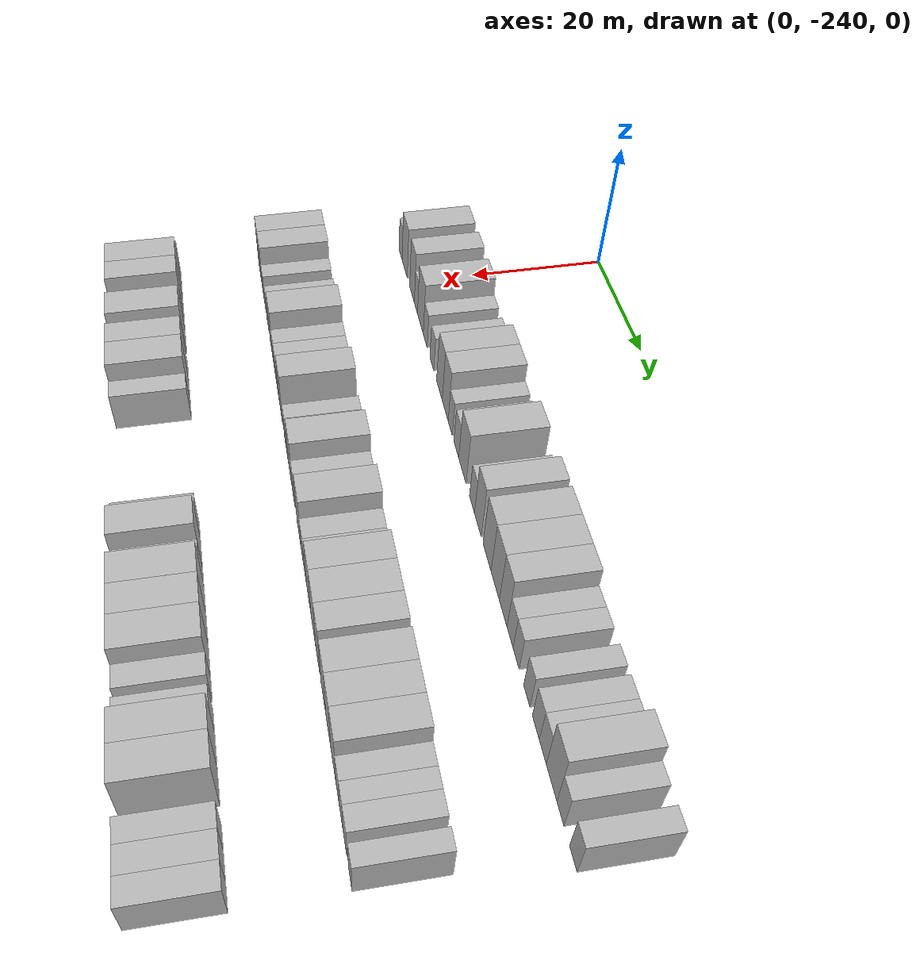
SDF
<sdf version="1.6">
 <world name="default">
  <model name="building_1">
   <static>1</static>
   <pose>25.0000 -246.7035 0 0.000000 0.000000 0.000000</pose>
   <link name="link">
    <pose>0 0 3.00 0 0 0</pose>
    <collision name="collision"><geometry><box><size>10.0000 2.5931 6.0000</size></box></geometry></collision>
    <visual name="visual">
     <cast_shadows>0</cast_shadows>
     <geometry><box><size>10.0000 2.5931 6.0000</size></box></geometry>
     <material>
      <script>
       <uri>model://HANNAS_wall/materials/scripts</uri>
       <uri>model://HANNAS_wall/materials/textures</uri>
       <name>vrc/HANNAS_wall</name>
      </script>
     </material>
    </visual>
   </link>
  </model>
  <model name="building_2">
   <static>1</static>
   <pose>25.0000 -243.2107 0 0.000000 0.000000 0.000000</pose>
   <link name="link">
    <pose>0 0 4.50 0 0 0</pose>
    <collision name="collision"><geometry><box><size>10.0000 4.3924 9.0000</size></box></geometry></collision>
    <visual name="visual">
     <cast_shadows>0</cast_shadows>
     <geometry><box><size>10.0000 4.3924 9.0000</size></box></geometry>
     <material>
      <script>
       <uri>model://HANNAS_wall/materials/scripts</uri>
       <uri>model://HANNAS_wall/materials/textures</uri>
       <name>vrc/HANNAS_wall</name>
      </script>
     </material>
    </visual>
   </link>
  </model>
  <model name="building_3">
   <static>1</static>
   <pose>25.0000 -237.1460 0 0.000000 0.000000 0.000000</pose>
   <link name="link">
    <pose>0 0 4.50 0 0 0</pose>
    <collision name="collision"><geometry><box><size>10.0000 3.7371 9.0000</size></box></geometry></collision>
    <visual name="visual">
     <cast_shadows>0</cast_shadows>
     <geometry><box><size>10.0000 3.7371 9.0000</size></box></geometry>
     <material>
      <script>
       <uri>model://HANNAS_wall/materials/scripts</uri>
       <uri>model://HANNAS_wall/materials/textures</uri>
       <name>vrc/HANNAS_wall</name>
      </script>
     </material>
    </visual>
   </link>
  </model>
  <model name="building_4">
   <static>1</static>
   <pose>25.0000 -234.0140 0 0.000000 0.000000 0.000000</pose>
   <link name="link">
    <pose>0 0 3.00 0 0 0</pose>
    <collision name="collision"><geometry><box><size>10.0000 2.5270 6.0000</size></box></geometry></collision>
    <visual name="visual">
     <cast_shadows>0</cast_shadows>
     <geometry><box><size>10.0000 2.5270 6.0000</size></box></geometry>
     <material>
      <script>
       <uri>model://HANNAS_wall/materials/scripts</uri>
       <uri>model://HANNAS_wall/materials/textures</uri>
       <name>vrc/HANNAS_wall</name>
      </script>
     </material>
    </visual>
   </link>
  </model>
  <model name="building_5">
   <static>1</static>
   <pose>25.0000 -230.5331 0 0.000000 0.000000 0.000000</pose>
   <link name="link">
    <pose>0 0 4.50 0 0 0</pose>
    <collision name="collision"><geometry><box><size>10.0000 4.4348 9.0000</size></box></geometry></collision>
    <visual name="visual">
     <cast_shadows>0</cast_shadows>
     <geometry><box><size>10.0000 4.4348 9.0000</size></box></geometry>
     <material>
      <script>
       <uri>model://HANNAS_wall/materials/scripts</uri>
       <uri>model://HANNAS_wall/materials/textures</uri>
       <name>vrc/HANNAS_wall</name>
      </script>
     </material>
    </visual>
   </link>
  </model>
  <model name="building_6">
   <static>1</static>
   <pose>25.0000 -226.8758 0 0.000000 0.000000 0.000000</pose>
   <link name="link">
    <pose>0 0 3.00 0 0 0</pose>
    <collision name="collision"><geometry><box><size>10.0000 2.8798 6.0000</size></box></geometry></collision>
    <visual name="visual">
     <cast_shadows>0</cast_shadows>
     <geometry><box><size>10.0000 2.8798 6.0000</size></box></geometry>
     <material>
      <script>
       <uri>model://HANNAS_wall/materials/scripts</uri>
       <uri>model://HANNAS_wall/materials/textures</uri>
       <name>vrc/HANNAS_wall</name>
      </script>
     </material>
    </visual>
   </link>
  </model>
  <model name="building_7">
   <static>1</static>
   <pose>25.0000 -222.0543 0 0.000000 0.000000 0.000000</pose>
   <link name="link">
    <pose>0 0 3.00 0 0 0</pose>
    <collision name="collision"><geometry><box><size>10.0000 2.7632 6.0000</size></box></geometry></collision>
    <visual name="visual">
     <cast_shadows>0</cast_shadows>
     <geometry><box><size>10.0000 2.7632 6.0000</size></box></geometry>
     <material>
      <script>
       <uri>model://HANNAS_wall/materials/scripts</uri>
       <uri>model://HANNAS_wall/materials/textures</uri>
       <name>vrc/HANNAS_wall</name>
      </script>
     </material>
    </visual>
   </link>
  </model>
  <model name="building_8">
   <static>1</static>
   <pose>25.0000 -216.7543 0 0.000000 0.000000 0.000000</pose>
   <link name="link">
    <pose>0 0 4.50 0 0 0</pose>
    <collision name="collision"><geometry><box><size>10.0000 3.8368 9.0000</size></box></geometry></collision>
    <visual name="visual">
     <cast_shadows>0</cast_shadows>
     <geometry><box><size>10.0000 3.8368 9.0000</size></box></geometry>
     <material>
      <script>
       <uri>model://HANNAS_wall/materials/scripts</uri>
       <uri>model://HANNAS_wall/materials/textures</uri>
       <name>vrc/HANNAS_wall</name>
      </script>
     </material>
    </visual>
   </link>
  </model>
  <model name="building_9">
   <static>1</static>
   <pose>25.0000 -212.8642 0 0.000000 0.000000 0.000000</pose>
   <link name="link">
    <pose>0 0 4.50 0 0 0</pose>
    <collision name="collision"><geometry><box><size>10.0000 3.9433 9.0000</size></box></geometry></collision>
    <visual name="visual">
     <cast_shadows>0</cast_shadows>
     <geometry><box><size>10.0000 3.9433 9.0000</size></box></geometry>
     <material>
      <script>
       <uri>model://HANNAS_wall/materials/scripts</uri>
       <uri>model://HANNAS_wall/materials/textures</uri>
       <name>vrc/HANNAS_wall</name>
      </script>
     </material>
    </visual>
   </link>
  </model>
  <model name="building_10">
   <static>1</static>
   <pose>25.0000 -209.5752 0 0.000000 0.000000 0.000000</pose>
   <link name="link">
    <pose>0 0 3.00 0 0 0</pose>
    <collision name="collision"><geometry><box><size>10.0000 2.6347 6.0000</size></box></geometry></collision>
    <visual name="visual">
     <cast_shadows>0</cast_shadows>
     <geometry><box><size>10.0000 2.6347 6.0000</size></box></geometry>
     <material>
      <script>
       <uri>model://HANNAS_wall/materials/scripts</uri>
       <uri>model://HANNAS_wall/materials/textures</uri>
       <name>vrc/HANNAS_wall</name>
      </script>
     </material>
    </visual>
   </link>
  </model>
  <model name="building_11">
   <static>1</static>
   <pose>25.0000 -205.7691 0 0.000000 0.000000 0.000000</pose>
   <link name="link">
    <pose>0 0 3.00 0 0 0</pose>
    <collision name="collision"><geometry><box><size>10.0000 2.9775 6.0000</size></box></geometry></collision>
    <visual name="visual">
     <cast_shadows>0</cast_shadows>
     <geometry><box><size>10.0000 2.9775 6.0000</size></box></geometry>
     <material>
      <script>
       <uri>model://HANNAS_wall/materials/scripts</uri>
       <uri>model://HANNAS_wall/materials/textures</uri>
       <name>vrc/HANNAS_wall</name>
      </script>
     </material>
    </visual>
   </link>
  </model>
  <model name="building_12">
   <static>1</static>
   <pose>25.0000 -202.0633 0 0.000000 0.000000 0.000000</pose>
   <link name="link">
    <pose>0 0 4.50 0 0 0</pose>
    <collision name="collision"><geometry><box><size>10.0000 4.4340 9.0000</size></box></geometry></collision>
    <visual name="visual">
     <cast_shadows>0</cast_shadows>
     <geometry><box><size>10.0000 4.4340 9.0000</size></box></geometry>
     <material>
      <script>
       <uri>model://HANNAS_wall/materials/scripts</uri>
       <uri>model://HANNAS_wall/materials/textures</uri>
       <name>vrc/HANNAS_wall</name>
      </script>
     </material>
    </visual>
   </link>
  </model>
  <model name="building_13">
   <static>1</static>
   <pose>25.0000 -196.4389 0 0.000000 0.000000 0.000000</pose>
   <link name="link">
    <pose>0 0 3.00 0 0 0</pose>
    <collision name="collision"><geometry><box><size>10.0000 2.8147 6.0000</size></box></geometry></collision>
    <visual name="visual">
     <cast_shadows>0</cast_shadows>
     <geometry><box><size>10.0000 2.8147 6.0000</size></box></geometry>
     <material>
      <script>
       <uri>model://HANNAS_wall/materials/scripts</uri>
       <uri>model://HANNAS_wall/materials/textures</uri>
       <name>vrc/HANNAS_wall</name>
      </script>
     </material>
    </visual>
   </link>
  </model>
  <model name="building_14">
   <static>1</static>
   <pose>25.0000 -193.1797 0 0.000000 0.000000 0.000000</pose>
   <link name="link">
    <pose>0 0 4.50 0 0 0</pose>
    <collision name="collision"><geometry><box><size>10.0000 3.7037 9.0000</size></box></geometry></collision>
    <visual name="visual">
     <cast_shadows>0</cast_shadows>
     <geometry><box><size>10.0000 3.7037 9.0000</size></box></geometry>
     <material>
      <script>
       <uri>model://HANNAS_wall/materials/scripts</uri>
       <uri>model://HANNAS_wall/materials/textures</uri>
       <name>vrc/HANNAS_wall</name>
      </script>
     </material>
    </visual>
   </link>
  </model>
  <model name="building_15">
   <static>1</static>
   <pose>25.0000 -188.2392 0 0.000000 0.000000 0.000000</pose>
   <link name="link">
    <pose>0 0 4.50 0 0 0</pose>
    <collision name="collision"><geometry><box><size>10.0000 4.1774 9.0000</size></box></geometry></collision>
    <visual name="visual">
     <cast_shadows>0</cast_shadows>
     <geometry><box><size>10.0000 4.1774 9.0000</size></box></geometry>
     <material>
      <script>
       <uri>model://HANNAS_wall/materials/scripts</uri>
       <uri>model://HANNAS_wall/materials/textures</uri>
       <name>vrc/HANNAS_wall</name>
      </script>
     </material>
    </visual>
   </link>
  </model>
  <model name="building_16">
   <static>1</static>
   <pose>25.0000 -184.0465 0 0.000000 0.000000 0.000000</pose>
   <link name="link">
    <pose>0 0 4.50 0 0 0</pose>
    <collision name="collision"><geometry><box><size>10.0000 4.2081 9.0000</size></box></geometry></collision>
    <visual name="visual">
     <cast_shadows>0</cast_shadows>
     <geometry><box><size>10.0000 4.2081 9.0000</size></box></geometry>
     <material>
      <script>
       <uri>model://HANNAS_wall/materials/scripts</uri>
       <uri>model://HANNAS_wall/materials/textures</uri>
       <name>vrc/HANNAS_wall</name>
      </script>
     </material>
    </visual>
   </link>
  </model>
  <model name="building_17">
   <static>1</static>
   <pose>25.0000 -180.0953 0 0.000000 0.000000 0.000000</pose>
   <link name="link">
    <pose>0 0 4.50 0 0 0</pose>
    <collision name="collision"><geometry><box><size>10.0000 3.6942 9.0000</size></box></geometry></collision>
    <visual name="visual">
     <cast_shadows>0</cast_shadows>
     <geometry><box><size>10.0000 3.6942 9.0000</size></box></geometry>
     <material>
      <script>
       <uri>model://HANNAS_wall/materials/scripts</uri>
       <uri>model://HANNAS_wall/materials/textures</uri>
       <name>vrc/HANNAS_wall</name>
      </script>
     </material>
    </visual>
   </link>
  </model>
  <model name="building_18">
   <static>1</static>
   <pose>25.0000 -176.8453 0 0.000000 0.000000 0.000000</pose>
   <link name="link">
    <pose>0 0 3.00 0 0 0</pose>
    <collision name="collision"><geometry><box><size>10.0000 2.8059 6.0000</size></box></geometry></collision>
    <visual name="visual">
     <cast_shadows>0</cast_shadows>
     <geometry><box><size>10.0000 2.8059 6.0000</size></box></geometry>
     <material>
      <script>
       <uri>model://HANNAS_wall/materials/scripts</uri>
       <uri>model://HANNAS_wall/materials/textures</uri>
       <name>vrc/HANNAS_wall</name>
      </script>
     </material>
    </visual>
   </link>
  </model>
  <model name="building_19">
   <static>1</static>
   <pose>25.0000 -174.0509 0 0.000000 0.000000 0.000000</pose>
   <link name="link">
    <pose>0 0 3.00 0 0 0</pose>
    <collision name="collision"><geometry><box><size>10.0000 2.7828 6.0000</size></box></geometry></collision>
    <visual name="visual">
     <cast_shadows>0</cast_shadows>
     <geometry><box><size>10.0000 2.7828 6.0000</size></box></geometry>
     <material>
      <script>
       <uri>model://HANNAS_wall/materials/scripts</uri>
       <uri>model://HANNAS_wall/materials/textures</uri>
       <name>vrc/HANNAS_wall</name>
      </script>
     </material>
    </visual>
   </link>
  </model>
  <model name="building_20">
   <static>1</static>
   <pose>25.0000 -169.3061 0 0.000000 0.000000 0.000000</pose>
   <link name="link">
    <pose>0 0 3.00 0 0 0</pose>
    <collision name="collision"><geometry><box><size>10.0000 2.7068 6.0000</size></box></geometry></collision>
    <visual name="visual">
     <cast_shadows>0</cast_shadows>
     <geometry><box><size>10.0000 2.7068 6.0000</size></box></geometry>
     <material>
      <script>
       <uri>model://HANNAS_wall/materials/scripts</uri>
       <uri>model://HANNAS_wall/materials/textures</uri>
       <name>vrc/HANNAS_wall</name>
      </script>
     </material>
    </visual>
   </link>
  </model>
  <model name="building_21">
   <static>1</static>
   <pose>25.0000 -165.5229 0 0.000000 0.000000 0.000000</pose>
   <link name="link">
    <pose>0 0 3.00 0 0 0</pose>
    <collision name="collision"><geometry><box><size>10.0000 2.8596 6.0000</size></box></geometry></collision>
    <visual name="visual">
     <cast_shadows>0</cast_shadows>
     <geometry><box><size>10.0000 2.8596 6.0000</size></box></geometry>
     <material>
      <script>
       <uri>model://HANNAS_wall/materials/scripts</uri>
       <uri>model://HANNAS_wall/materials/textures</uri>
       <name>vrc/HANNAS_wall</name>
      </script>
     </material>
    </visual>
   </link>
  </model>
  <model name="building_22">
   <static>1</static>
   <pose>25.0000 -162.6863 0 0.000000 0.000000 0.000000</pose>
   <link name="link">
    <pose>0 0 3.00 0 0 0</pose>
    <collision name="collision"><geometry><box><size>10.0000 2.8137 6.0000</size></box></geometry></collision>
    <visual name="visual">
     <cast_shadows>0</cast_shadows>
     <geometry><box><size>10.0000 2.8137 6.0000</size></box></geometry>
     <material>
      <script>
       <uri>model://HANNAS_wall/materials/scripts</uri>
       <uri>model://HANNAS_wall/materials/textures</uri>
       <name>vrc/HANNAS_wall</name>
      </script>
     </material>
    </visual>
   </link>
  </model>
  <model name="building_23">
   <static>1</static>
   <pose>25.0000 -159.2390 0 0.000000 0.000000 0.000000</pose>
   <link name="link">
    <pose>0 0 4.50 0 0 0</pose>
    <collision name="collision"><geometry><box><size>10.0000 4.0809 9.0000</size></box></geometry></collision>
    <visual name="visual">
     <cast_shadows>0</cast_shadows>
     <geometry><box><size>10.0000 4.0809 9.0000</size></box></geometry>
     <material>
      <script>
       <uri>model://HANNAS_wall/materials/scripts</uri>
       <uri>model://HANNAS_wall/materials/textures</uri>
       <name>vrc/HANNAS_wall</name>
      </script>
     </material>
    </visual>
   </link>
  </model>
  <model name="building_24">
   <static>1</static>
   <pose>25.0000 -155.8877 0 0.000000 0.000000 0.000000</pose>
   <link name="link">
    <pose>0 0 3.00 0 0 0</pose>
    <collision name="collision"><geometry><box><size>10.0000 2.6216 6.0000</size></box></geometry></collision>
    <visual name="visual">
     <cast_shadows>0</cast_shadows>
     <geometry><box><size>10.0000 2.6216 6.0000</size></box></geometry>
     <material>
      <script>
       <uri>model://HANNAS_wall/materials/scripts</uri>
       <uri>model://HANNAS_wall/materials/textures</uri>
       <name>vrc/HANNAS_wall</name>
      </script>
     </material>
    </visual>
   </link>
  </model>
  <model name="building_25">
   <static>1</static>
   <pose>25.0000 -151.2489 0 0.000000 0.000000 0.000000</pose>
   <link name="link">
    <pose>0 0 3.00 0 0 0</pose>
    <collision name="collision"><geometry><box><size>10.0000 2.6561 6.0000</size></box></geometry></collision>
    <visual name="visual">
     <cast_shadows>0</cast_shadows>
     <geometry><box><size>10.0000 2.6561 6.0000</size></box></geometry>
     <material>
      <script>
       <uri>model://HANNAS_wall/materials/scripts</uri>
       <uri>model://HANNAS_wall/materials/textures</uri>
       <name>vrc/HANNAS_wall</name>
      </script>
     </material>
    </visual>
   </link>
  </model>
  <model name="building_121">
   <static>1</static>
   <pose>47.0000 -246.1594 0 0.000000 0.000000 0.000000</pose>
   <link name="link">
    <pose>0 0 4.50 0 0 0</pose>
    <collision name="collision"><geometry><box><size>10.0000 3.6813 9.0000</size></box></geometry></collision>
    <visual name="visual">
     <cast_shadows>0</cast_shadows>
     <geometry><box><size>10.0000 3.6813 9.0000</size></box></geometry>
     <material>
      <script>
       <uri>model://HANNAS_wall/materials/scripts</uri>
       <uri>model://HANNAS_wall/materials/textures</uri>
       <name>vrc/HANNAS_wall</name>
      </script>
     </material>
    </visual>
   </link>
  </model>
  <model name="building_122">
   <static>1</static>
   <pose>47.0000 -242.3131 0 0.000000 0.000000 0.000000</pose>
   <link name="link">
    <pose>0 0 4.50 0 0 0</pose>
    <collision name="collision"><geometry><box><size>10.0000 4.0114 9.0000</size></box></geometry></collision>
    <visual name="visual">
     <cast_shadows>0</cast_shadows>
     <geometry><box><size>10.0000 4.0114 9.0000</size></box></geometry>
     <material>
      <script>
       <uri>model://HANNAS_wall/materials/scripts</uri>
       <uri>model://HANNAS_wall/materials/textures</uri>
       <name>vrc/HANNAS_wall</name>
      </script>
     </material>
    </visual>
   </link>
  </model>
  <model name="building_123">
   <static>1</static>
   <pose>47.0000 -238.9091 0 0.000000 0.000000 0.000000</pose>
   <link name="link">
    <pose>0 0 3.00 0 0 0</pose>
    <collision name="collision"><geometry><box><size>10.0000 2.7965 6.0000</size></box></geometry></collision>
    <visual name="visual">
     <cast_shadows>0</cast_shadows>
     <geometry><box><size>10.0000 2.7965 6.0000</size></box></geometry>
     <material>
      <script>
       <uri>model://HANNAS_wall/materials/scripts</uri>
       <uri>model://HANNAS_wall/materials/textures</uri>
       <name>vrc/HANNAS_wall</name>
      </script>
     </material>
    </visual>
   </link>
  </model>
  <model name="building_124">
   <static>1</static>
   <pose>47.0000 -234.0805 0 0.000000 0.000000 0.000000</pose>
   <link name="link">
    <pose>0 0 3.00 0 0 0</pose>
    <collision name="collision"><geometry><box><size>10.0000 2.8608 6.0000</size></box></geometry></collision>
    <visual name="visual">
     <cast_shadows>0</cast_shadows>
     <geometry><box><size>10.0000 2.8608 6.0000</size></box></geometry>
     <material>
      <script>
       <uri>model://HANNAS_wall/materials/scripts</uri>
       <uri>model://HANNAS_wall/materials/textures</uri>
       <name>vrc/HANNAS_wall</name>
      </script>
     </material>
    </visual>
   </link>
  </model>
  <model name="building_125">
   <static>1</static>
   <pose>47.0000 -228.4274 0 0.000000 0.000000 0.000000</pose>
   <link name="link">
    <pose>0 0 4.50 0 0 0</pose>
    <collision name="collision"><geometry><box><size>10.0000 4.4453 9.0000</size></box></geometry></collision>
    <visual name="visual">
     <cast_shadows>0</cast_shadows>
     <geometry><box><size>10.0000 4.4453 9.0000</size></box></geometry>
     <material>
      <script>
       <uri>model://HANNAS_wall/materials/scripts</uri>
       <uri>model://HANNAS_wall/materials/textures</uri>
       <name>vrc/HANNAS_wall</name>
      </script>
     </material>
    </visual>
   </link>
  </model>
  <model name="building_126">
   <static>1</static>
   <pose>47.0000 -224.8129 0 0.000000 0.000000 0.000000</pose>
   <link name="link">
    <pose>0 0 3.00 0 0 0</pose>
    <collision name="collision"><geometry><box><size>10.0000 2.7836 6.0000</size></box></geometry></collision>
    <visual name="visual">
     <cast_shadows>0</cast_shadows>
     <geometry><box><size>10.0000 2.7836 6.0000</size></box></geometry>
     <material>
      <script>
       <uri>model://HANNAS_wall/materials/scripts</uri>
       <uri>model://HANNAS_wall/materials/textures</uri>
       <name>vrc/HANNAS_wall</name>
      </script>
     </material>
    </visual>
   </link>
  </model>
  <model name="building_127">
   <static>1</static>
   <pose>47.0000 -221.9299 0 0.000000 0.000000 0.000000</pose>
   <link name="link">
    <pose>0 0 3.00 0 0 0</pose>
    <collision name="collision"><geometry><box><size>10.0000 2.9826 6.0000</size></box></geometry></collision>
    <visual name="visual">
     <cast_shadows>0</cast_shadows>
     <geometry><box><size>10.0000 2.9826 6.0000</size></box></geometry>
     <material>
      <script>
       <uri>model://HANNAS_wall/materials/scripts</uri>
       <uri>model://HANNAS_wall/materials/textures</uri>
       <name>vrc/HANNAS_wall</name>
      </script>
     </material>
    </visual>
   </link>
  </model>
  <model name="building_128">
   <static>1</static>
   <pose>47.0000 -219.1681 0 0.000000 0.000000 0.000000</pose>
   <link name="link">
    <pose>0 0 3.00 0 0 0</pose>
    <collision name="collision"><geometry><box><size>10.0000 2.5411 6.0000</size></box></geometry></collision>
    <visual name="visual">
     <cast_shadows>0</cast_shadows>
     <geometry><box><size>10.0000 2.5411 6.0000</size></box></geometry>
     <material>
      <script>
       <uri>model://HANNAS_wall/materials/scripts</uri>
       <uri>model://HANNAS_wall/materials/textures</uri>
       <name>vrc/HANNAS_wall</name>
      </script>
     </material>
    </visual>
   </link>
  </model>
  <model name="building_129">
   <static>1</static>
   <pose>47.0000 -215.8409 0 0.000000 0.000000 0.000000</pose>
   <link name="link">
    <pose>0 0 4.50 0 0 0</pose>
    <collision name="collision"><geometry><box><size>10.0000 4.1133 9.0000</size></box></geometry></collision>
    <visual name="visual">
     <cast_shadows>0</cast_shadows>
     <geometry><box><size>10.0000 4.1133 9.0000</size></box></geometry>
     <material>
      <script>
       <uri>model://HANNAS_wall/materials/scripts</uri>
       <uri>model://HANNAS_wall/materials/textures</uri>
       <name>vrc/HANNAS_wall</name>
      </script>
     </material>
    </visual>
   </link>
  </model>
  <model name="building_130">
   <static>1</static>
   <pose>47.0000 -210.5532 0 0.000000 0.000000 0.000000</pose>
   <link name="link">
    <pose>0 0 3.00 0 0 0</pose>
    <collision name="collision"><geometry><box><size>10.0000 2.4621 6.0000</size></box></geometry></collision>
    <visual name="visual">
     <cast_shadows>0</cast_shadows>
     <geometry><box><size>10.0000 2.4621 6.0000</size></box></geometry>
     <material>
      <script>
       <uri>model://HANNAS_wall/materials/scripts</uri>
       <uri>model://HANNAS_wall/materials/textures</uri>
       <name>vrc/HANNAS_wall</name>
      </script>
     </material>
    </visual>
   </link>
  </model>
  <model name="building_131">
   <static>1</static>
   <pose>47.0000 -207.8565 0 0.000000 0.000000 0.000000</pose>
   <link name="link">
    <pose>0 0 3.00 0 0 0</pose>
    <collision name="collision"><geometry><box><size>10.0000 2.9312 6.0000</size></box></geometry></collision>
    <visual name="visual">
     <cast_shadows>0</cast_shadows>
     <geometry><box><size>10.0000 2.9312 6.0000</size></box></geometry>
     <material>
      <script>
       <uri>model://HANNAS_wall/materials/scripts</uri>
       <uri>model://HANNAS_wall/materials/textures</uri>
       <name>vrc/HANNAS_wall</name>
      </script>
     </material>
    </visual>
   </link>
  </model>
  <model name="building_132">
   <static>1</static>
   <pose>47.0000 -204.2799 0 0.000000 0.000000 0.000000</pose>
   <link name="link">
    <pose>0 0 4.50 0 0 0</pose>
    <collision name="collision"><geometry><box><size>10.0000 4.2219 9.0000</size></box></geometry></collision>
    <visual name="visual">
     <cast_shadows>0</cast_shadows>
     <geometry><box><size>10.0000 4.2219 9.0000</size></box></geometry>
     <material>
      <script>
       <uri>model://HANNAS_wall/materials/scripts</uri>
       <uri>model://HANNAS_wall/materials/textures</uri>
       <name>vrc/HANNAS_wall</name>
      </script>
     </material>
    </visual>
   </link>
  </model>
  <model name="building_133">
   <static>1</static>
   <pose>47.0000 -200.7617 0 0.000000 0.000000 0.000000</pose>
   <link name="link">
    <pose>0 0 3.00 0 0 0</pose>
    <collision name="collision"><geometry><box><size>10.0000 2.8145 6.0000</size></box></geometry></collision>
    <visual name="visual">
     <cast_shadows>0</cast_shadows>
     <geometry><box><size>10.0000 2.8145 6.0000</size></box></geometry>
     <material>
      <script>
       <uri>model://HANNAS_wall/materials/scripts</uri>
       <uri>model://HANNAS_wall/materials/textures</uri>
       <name>vrc/HANNAS_wall</name>
      </script>
     </material>
    </visual>
   </link>
  </model>
  <model name="building_134">
   <static>1</static>
   <pose>47.0000 -195.2054 0 0.000000 0.000000 0.000000</pose>
   <link name="link">
    <pose>0 0 4.50 0 0 0</pose>
    <collision name="collision"><geometry><box><size>10.0000 4.2982 9.0000</size></box></geometry></collision>
    <visual name="visual">
     <cast_shadows>0</cast_shadows>
     <geometry><box><size>10.0000 4.2982 9.0000</size></box></geometry>
     <material>
      <script>
       <uri>model://HANNAS_wall/materials/scripts</uri>
       <uri>model://HANNAS_wall/materials/textures</uri>
       <name>vrc/HANNAS_wall</name>
      </script>
     </material>
    </visual>
   </link>
  </model>
  <model name="building_135">
   <static>1</static>
   <pose>47.0000 -191.5661 0 0.000000 0.000000 0.000000</pose>
   <link name="link">
    <pose>0 0 3.00 0 0 0</pose>
    <collision name="collision"><geometry><box><size>10.0000 2.9803 6.0000</size></box></geometry></collision>
    <visual name="visual">
     <cast_shadows>0</cast_shadows>
     <geometry><box><size>10.0000 2.9803 6.0000</size></box></geometry>
     <material>
      <script>
       <uri>model://HANNAS_wall/materials/scripts</uri>
       <uri>model://HANNAS_wall/materials/textures</uri>
       <name>vrc/HANNAS_wall</name>
      </script>
     </material>
    </visual>
   </link>
  </model>
  <model name="building_136">
   <static>1</static>
   <pose>47.0000 -188.7739 0 0.000000 0.000000 0.000000</pose>
   <link name="link">
    <pose>0 0 3.00 0 0 0</pose>
    <collision name="collision"><geometry><box><size>10.0000 2.6042 6.0000</size></box></geometry></collision>
    <visual name="visual">
     <cast_shadows>0</cast_shadows>
     <geometry><box><size>10.0000 2.6042 6.0000</size></box></geometry>
     <material>
      <script>
       <uri>model://HANNAS_wall/materials/scripts</uri>
       <uri>model://HANNAS_wall/materials/textures</uri>
       <name>vrc/HANNAS_wall</name>
      </script>
     </material>
    </visual>
   </link>
  </model>
  <model name="building_137">
   <static>1</static>
   <pose>47.0000 -185.5122 0 0.000000 0.000000 0.000000</pose>
   <link name="link">
    <pose>0 0 4.50 0 0 0</pose>
    <collision name="collision"><geometry><box><size>10.0000 3.9191 9.0000</size></box></geometry></collision>
    <visual name="visual">
     <cast_shadows>0</cast_shadows>
     <geometry><box><size>10.0000 3.9191 9.0000</size></box></geometry>
     <material>
      <script>
       <uri>model://HANNAS_wall/materials/scripts</uri>
       <uri>model://HANNAS_wall/materials/textures</uri>
       <name>vrc/HANNAS_wall</name>
      </script>
     </material>
    </visual>
   </link>
  </model>
  <model name="building_138">
   <static>1</static>
   <pose>47.0000 -181.3756 0 0.000000 0.000000 0.000000</pose>
   <link name="link">
    <pose>0 0 4.50 0 0 0</pose>
    <collision name="collision"><geometry><box><size>10.0000 4.3540 9.0000</size></box></geometry></collision>
    <visual name="visual">
     <cast_shadows>0</cast_shadows>
     <geometry><box><size>10.0000 4.3540 9.0000</size></box></geometry>
     <material>
      <script>
       <uri>model://HANNAS_wall/materials/scripts</uri>
       <uri>model://HANNAS_wall/materials/textures</uri>
       <name>vrc/HANNAS_wall</name>
      </script>
     </material>
    </visual>
   </link>
  </model>
  <model name="building_139">
   <static>1</static>
   <pose>47.0000 -177.3970 0 0.000000 0.000000 0.000000</pose>
   <link name="link">
    <pose>0 0 4.50 0 0 0</pose>
    <collision name="collision"><geometry><box><size>10.0000 3.6031 9.0000</size></box></geometry></collision>
    <visual name="visual">
     <cast_shadows>0</cast_shadows>
     <geometry><box><size>10.0000 3.6031 9.0000</size></box></geometry>
     <material>
      <script>
       <uri>model://HANNAS_wall/materials/scripts</uri>
       <uri>model://HANNAS_wall/materials/textures</uri>
       <name>vrc/HANNAS_wall</name>
      </script>
     </material>
    </visual>
   </link>
  </model>
  <model name="building_140">
   <static>1</static>
   <pose>47.0000 -172.6072 0 0.000000 0.000000 0.000000</pose>
   <link name="link">
    <pose>0 0 4.50 0 0 0</pose>
    <collision name="collision"><geometry><box><size>10.0000 3.9766 9.0000</size></box></geometry></collision>
    <visual name="visual">
     <cast_shadows>0</cast_shadows>
     <geometry><box><size>10.0000 3.9766 9.0000</size></box></geometry>
     <material>
      <script>
       <uri>model://HANNAS_wall/materials/scripts</uri>
       <uri>model://HANNAS_wall/materials/textures</uri>
       <name>vrc/HANNAS_wall</name>
      </script>
     </material>
    </visual>
   </link>
  </model>
  <model name="building_141">
   <static>1</static>
   <pose>47.0000 -168.6987 0 0.000000 0.000000 0.000000</pose>
   <link name="link">
    <pose>0 0 4.50 0 0 0</pose>
    <collision name="collision"><geometry><box><size>10.0000 3.8405 9.0000</size></box></geometry></collision>
    <visual name="visual">
     <cast_shadows>0</cast_shadows>
     <geometry><box><size>10.0000 3.8405 9.0000</size></box></geometry>
     <material>
      <script>
       <uri>model://HANNAS_wall/materials/scripts</uri>
       <uri>model://HANNAS_wall/materials/textures</uri>
       <name>vrc/HANNAS_wall</name>
      </script>
     </material>
    </visual>
   </link>
  </model>
  <model name="building_142">
   <static>1</static>
   <pose>47.0000 -164.8479 0 0.000000 0.000000 0.000000</pose>
   <link name="link">
    <pose>0 0 4.50 0 0 0</pose>
    <collision name="collision"><geometry><box><size>10.0000 3.8611 9.0000</size></box></geometry></collision>
    <visual name="visual">
     <cast_shadows>0</cast_shadows>
     <geometry><box><size>10.0000 3.8611 9.0000</size></box></geometry>
     <material>
      <script>
       <uri>model://HANNAS_wall/materials/scripts</uri>
       <uri>model://HANNAS_wall/materials/textures</uri>
       <name>vrc/HANNAS_wall</name>
      </script>
     </material>
    </visual>
   </link>
  </model>
  <model name="building_143">
   <static>1</static>
   <pose>47.0000 -161.5815 0 0.000000 0.000000 0.000000</pose>
   <link name="link">
    <pose>0 0 3.00 0 0 0</pose>
    <collision name="collision"><geometry><box><size>10.0000 2.6717 6.0000</size></box></geometry></collision>
    <visual name="visual">
     <cast_shadows>0</cast_shadows>
     <geometry><box><size>10.0000 2.6717 6.0000</size></box></geometry>
     <material>
      <script>
       <uri>model://HANNAS_wall/materials/scripts</uri>
       <uri>model://HANNAS_wall/materials/textures</uri>
       <name>vrc/HANNAS_wall</name>
      </script>
     </material>
    </visual>
   </link>
  </model>
  <model name="building_144">
   <static>1</static>
   <pose>47.0000 -159.0443 0 0.000000 0.000000 0.000000</pose>
   <link name="link">
    <pose>0 0 3.00 0 0 0</pose>
    <collision name="collision"><geometry><box><size>10.0000 2.4026 6.0000</size></box></geometry></collision>
    <visual name="visual">
     <cast_shadows>0</cast_shadows>
     <geometry><box><size>10.0000 2.4026 6.0000</size></box></geometry>
     <material>
      <script>
       <uri>model://HANNAS_wall/materials/scripts</uri>
       <uri>model://HANNAS_wall/materials/textures</uri>
       <name>vrc/HANNAS_wall</name>
      </script>
     </material>
    </visual>
   </link>
  </model>
  <model name="building_145">
   <static>1</static>
   <pose>47.0000 -156.4471 0 0.000000 0.000000 0.000000</pose>
   <link name="link">
    <pose>0 0 3.00 0 0 0</pose>
    <collision name="collision"><geometry><box><size>10.0000 2.7918 6.0000</size></box></geometry></collision>
    <visual name="visual">
     <cast_shadows>0</cast_shadows>
     <geometry><box><size>10.0000 2.7918 6.0000</size></box></geometry>
     <material>
      <script>
       <uri>model://HANNAS_wall/materials/scripts</uri>
       <uri>model://HANNAS_wall/materials/textures</uri>
       <name>vrc/HANNAS_wall</name>
      </script>
     </material>
    </visual>
   </link>
  </model>
  <model name="building_146">
   <static>1</static>
   <pose>47.0000 -152.8448 0 0.000000 0.000000 0.000000</pose>
   <link name="link">
    <pose>0 0 3.00 0 0 0</pose>
    <collision name="collision"><geometry><box><size>10.0000 2.4128 6.0000</size></box></geometry></collision>
    <visual name="visual">
     <cast_shadows>0</cast_shadows>
     <geometry><box><size>10.0000 2.4128 6.0000</size></box></geometry>
     <material>
      <script>
       <uri>model://HANNAS_wall/materials/scripts</uri>
       <uri>model://HANNAS_wall/materials/textures</uri>
       <name>vrc/HANNAS_wall</name>
      </script>
     </material>
    </visual>
   </link>
  </model>
  <model name="building_239">
   <static>1</static>
   <pose>69.0000 -246.5015 0 0.000000 0.000000 0.000000</pose>
   <link name="link">
    <pose>0 0 3.00 0 0 0</pose>
    <collision name="collision"><geometry><box><size>10.0000 2.9971 6.0000</size></box></geometry></collision>
    <visual name="visual">
     <cast_shadows>0</cast_shadows>
     <geometry><box><size>10.0000 2.9971 6.0000</size></box></geometry>
     <material>
      <script>
       <uri>model://HANNAS_wall/materials/scripts</uri>
       <uri>model://HANNAS_wall/materials/textures</uri>
       <name>vrc/HANNAS_wall</name>
      </script>
     </material>
    </visual>
   </link>
  </model>
  <model name="building_240">
   <static>1</static>
   <pose>69.0000 -242.9151 0 0.000000 0.000000 0.000000</pose>
   <link name="link">
    <pose>0 0 4.50 0 0 0</pose>
    <collision name="collision"><geometry><box><size>10.0000 4.1757 9.0000</size></box></geometry></collision>
    <visual name="visual">
     <cast_shadows>0</cast_shadows>
     <geometry><box><size>10.0000 4.1757 9.0000</size></box></geometry>
     <material>
      <script>
       <uri>model://HANNAS_wall/materials/scripts</uri>
       <uri>model://HANNAS_wall/materials/textures</uri>
       <name>vrc/HANNAS_wall</name>
      </script>
     </material>
    </visual>
   </link>
  </model>
  <model name="building_241">
   <static>1</static>
   <pose>69.0000 -238.9249 0 0.000000 0.000000 0.000000</pose>
   <link name="link">
    <pose>0 0 4.50 0 0 0</pose>
    <collision name="collision"><geometry><box><size>10.0000 3.8048 9.0000</size></box></geometry></collision>
    <visual name="visual">
     <cast_shadows>0</cast_shadows>
     <geometry><box><size>10.0000 3.8048 9.0000</size></box></geometry>
     <material>
      <script>
       <uri>model://HANNAS_wall/materials/scripts</uri>
       <uri>model://HANNAS_wall/materials/textures</uri>
       <name>vrc/HANNAS_wall</name>
      </script>
     </material>
    </visual>
   </link>
  </model>
  <model name="building_242">
   <static>1</static>
   <pose>69.0000 -235.5718 0 0.000000 0.000000 0.000000</pose>
   <link name="link">
    <pose>0 0 3.00 0 0 0</pose>
    <collision name="collision"><geometry><box><size>10.0000 2.9014 6.0000</size></box></geometry></collision>
    <visual name="visual">
     <cast_shadows>0</cast_shadows>
     <geometry><box><size>10.0000 2.9014 6.0000</size></box></geometry>
     <material>
      <script>
       <uri>model://HANNAS_wall/materials/scripts</uri>
       <uri>model://HANNAS_wall/materials/textures</uri>
       <name>vrc/HANNAS_wall</name>
      </script>
     </material>
    </visual>
   </link>
  </model>
  <model name="building_243">
   <static>1</static>
   <pose>69.0000 -231.8918 0 0.000000 0.000000 0.000000</pose>
   <link name="link">
    <pose>0 0 4.50 0 0 0</pose>
    <collision name="collision"><geometry><box><size>10.0000 4.4586 9.0000</size></box></geometry></collision>
    <visual name="visual">
     <cast_shadows>0</cast_shadows>
     <geometry><box><size>10.0000 4.4586 9.0000</size></box></geometry>
     <material>
      <script>
       <uri>model://HANNAS_wall/materials/scripts</uri>
       <uri>model://HANNAS_wall/materials/textures</uri>
       <name>vrc/HANNAS_wall</name>
      </script>
     </material>
    </visual>
   </link>
  </model>
  <model name="building_244">
   <static>1</static>
   <pose>69.0000 -225.8264 0 0.000000 0.000000 0.000000</pose>
   <link name="link">
    <pose>0 0 4.50 0 0 0</pose>
    <collision name="collision"><geometry><box><size>10.0000 3.6721 9.0000</size></box></geometry></collision>
    <visual name="visual">
     <cast_shadows>0</cast_shadows>
     <geometry><box><size>10.0000 3.6721 9.0000</size></box></geometry>
     <material>
      <script>
       <uri>model://HANNAS_wall/materials/scripts</uri>
       <uri>model://HANNAS_wall/materials/textures</uri>
       <name>vrc/HANNAS_wall</name>
      </script>
     </material>
    </visual>
   </link>
  </model>
  <model name="building_245">
   <static>1</static>
   <pose>69.0000 -221.8027 0 0.000000 0.000000 0.000000</pose>
   <link name="link">
    <pose>0 0 4.50 0 0 0</pose>
    <collision name="collision"><geometry><box><size>10.0000 4.3751 9.0000</size></box></geometry></collision>
    <visual name="visual">
     <cast_shadows>0</cast_shadows>
     <geometry><box><size>10.0000 4.3751 9.0000</size></box></geometry>
     <material>
      <script>
       <uri>model://HANNAS_wall/materials/scripts</uri>
       <uri>model://HANNAS_wall/materials/textures</uri>
       <name>vrc/HANNAS_wall</name>
      </script>
     </material>
    </visual>
   </link>
  </model>
  <model name="building_246">
   <static>1</static>
   <pose>69.0000 -218.1663 0 0.000000 0.000000 0.000000</pose>
   <link name="link">
    <pose>0 0 3.00 0 0 0</pose>
    <collision name="collision"><geometry><box><size>10.0000 2.8978 6.0000</size></box></geometry></collision>
    <visual name="visual">
     <cast_shadows>0</cast_shadows>
     <geometry><box><size>10.0000 2.8978 6.0000</size></box></geometry>
     <material>
      <script>
       <uri>model://HANNAS_wall/materials/scripts</uri>
       <uri>model://HANNAS_wall/materials/textures</uri>
       <name>vrc/HANNAS_wall</name>
      </script>
     </material>
    </visual>
   </link>
  </model>
  <model name="building_247">
   <static>1</static>
   <pose>69.0000 -197.5575 0 0.000000 0.000000 0.000000</pose>
   <link name="link">
    <pose>0 0 3.00 0 0 0</pose>
    <collision name="collision"><geometry><box><size>10.0000 2.7732 6.0000</size></box></geometry></collision>
    <visual name="visual">
     <cast_shadows>0</cast_shadows>
     <geometry><box><size>10.0000 2.7732 6.0000</size></box></geometry>
     <material>
      <script>
       <uri>model://HANNAS_wall/materials/scripts</uri>
       <uri>model://HANNAS_wall/materials/textures</uri>
       <name>vrc/HANNAS_wall</name>
      </script>
     </material>
    </visual>
   </link>
  </model>
  <model name="building_248">
   <static>1</static>
   <pose>69.0000 -194.0827 0 0.000000 0.000000 0.000000</pose>
   <link name="link">
    <pose>0 0 4.50 0 0 0</pose>
    <collision name="collision"><geometry><box><size>10.0000 4.1765 9.0000</size></box></geometry></collision>
    <visual name="visual">
     <cast_shadows>0</cast_shadows>
     <geometry><box><size>10.0000 4.1765 9.0000</size></box></geometry>
     <material>
      <script>
       <uri>model://HANNAS_wall/materials/scripts</uri>
       <uri>model://HANNAS_wall/materials/textures</uri>
       <name>vrc/HANNAS_wall</name>
      </script>
     </material>
    </visual>
   </link>
  </model>
  <model name="building_249">
   <static>1</static>
   <pose>69.0000 -190.7501 0 0.000000 0.000000 0.000000</pose>
   <link name="link">
    <pose>0 0 3.00 0 0 0</pose>
    <collision name="collision"><geometry><box><size>10.0000 2.4887 6.0000</size></box></geometry></collision>
    <visual name="visual">
     <cast_shadows>0</cast_shadows>
     <geometry><box><size>10.0000 2.4887 6.0000</size></box></geometry>
     <material>
      <script>
       <uri>model://HANNAS_wall/materials/scripts</uri>
       <uri>model://HANNAS_wall/materials/textures</uri>
       <name>vrc/HANNAS_wall</name>
      </script>
     </material>
    </visual>
   </link>
  </model>
  <model name="building_250">
   <static>1</static>
   <pose>69.0000 -187.4018 0 0.000000 0.000000 0.000000</pose>
   <link name="link">
    <pose>0 0 4.50 0 0 0</pose>
    <collision name="collision"><geometry><box><size>10.0000 4.2079 9.0000</size></box></geometry></collision>
    <visual name="visual">
     <cast_shadows>0</cast_shadows>
     <geometry><box><size>10.0000 4.2079 9.0000</size></box></geometry>
     <material>
      <script>
       <uri>model://HANNAS_wall/materials/scripts</uri>
       <uri>model://HANNAS_wall/materials/textures</uri>
       <name>vrc/HANNAS_wall</name>
      </script>
     </material>
    </visual>
   </link>
  </model>
  <model name="building_251">
   <static>1</static>
   <pose>69.0000 -183.3072 0 0.000000 0.000000 0.000000</pose>
   <link name="link">
    <pose>0 0 4.50 0 0 0</pose>
    <collision name="collision"><geometry><box><size>10.0000 3.9812 9.0000</size></box></geometry></collision>
    <visual name="visual">
     <cast_shadows>0</cast_shadows>
     <geometry><box><size>10.0000 3.9812 9.0000</size></box></geometry>
     <material>
      <script>
       <uri>model://HANNAS_wall/materials/scripts</uri>
       <uri>model://HANNAS_wall/materials/textures</uri>
       <name>vrc/HANNAS_wall</name>
      </script>
     </material>
    </visual>
   </link>
  </model>
  <model name="building_252">
   <static>1</static>
   <pose>69.0000 -179.1254 0 0.000000 0.000000 0.000000</pose>
   <link name="link">
    <pose>0 0 4.50 0 0 0</pose>
    <collision name="collision"><geometry><box><size>10.0000 4.3823 9.0000</size></box></geometry></collision>
    <visual name="visual">
     <cast_shadows>0</cast_shadows>
     <geometry><box><size>10.0000 4.3823 9.0000</size></box></geometry>
     <material>
      <script>
       <uri>model://HANNAS_wall/materials/scripts</uri>
       <uri>model://HANNAS_wall/materials/textures</uri>
       <name>vrc/HANNAS_wall</name>
      </script>
     </material>
    </visual>
   </link>
  </model>
  <model name="building_253">
   <static>1</static>
   <pose>69.0000 -175.4938 0 0.000000 0.000000 0.000000</pose>
   <link name="link">
    <pose>0 0 3.00 0 0 0</pose>
    <collision name="collision"><geometry><box><size>10.0000 2.8809 6.0000</size></box></geometry></collision>
    <visual name="visual">
     <cast_shadows>0</cast_shadows>
     <geometry><box><size>10.0000 2.8809 6.0000</size></box></geometry>
     <material>
      <script>
       <uri>model://HANNAS_wall/materials/scripts</uri>
       <uri>model://HANNAS_wall/materials/textures</uri>
       <name>vrc/HANNAS_wall</name>
      </script>
     </material>
    </visual>
   </link>
  </model>
  <model name="building_254">
   <static>1</static>
   <pose>69.0000 -171.6755 0 0.000000 0.000000 0.000000</pose>
   <link name="link">
    <pose>0 0 3.00 0 0 0</pose>
    <collision name="collision"><geometry><box><size>10.0000 2.7556 6.0000</size></box></geometry></collision>
    <visual name="visual">
     <cast_shadows>0</cast_shadows>
     <geometry><box><size>10.0000 2.7556 6.0000</size></box></geometry>
     <material>
      <script>
       <uri>model://HANNAS_wall/materials/scripts</uri>
       <uri>model://HANNAS_wall/materials/textures</uri>
       <name>vrc/HANNAS_wall</name>
      </script>
     </material>
    </visual>
   </link>
  </model>
  <model name="building_255">
   <static>1</static>
   <pose>69.0000 -168.3284 0 0.000000 0.000000 0.000000</pose>
   <link name="link">
    <pose>0 0 4.50 0 0 0</pose>
    <collision name="collision"><geometry><box><size>10.0000 3.9386 9.0000</size></box></geometry></collision>
    <visual name="visual">
     <cast_shadows>0</cast_shadows>
     <geometry><box><size>10.0000 3.9386 9.0000</size></box></geometry>
     <material>
      <script>
       <uri>model://HANNAS_wall/materials/scripts</uri>
       <uri>model://HANNAS_wall/materials/textures</uri>
       <name>vrc/HANNAS_wall</name>
      </script>
     </material>
    </visual>
   </link>
  </model>
  <model name="building_256">
   <static>1</static>
   <pose>69.0000 -164.2838 0 0.000000 0.000000 0.000000</pose>
   <link name="link">
    <pose>0 0 4.50 0 0 0</pose>
    <collision name="collision"><geometry><box><size>10.0000 4.1507 9.0000</size></box></geometry></collision>
    <visual name="visual">
     <cast_shadows>0</cast_shadows>
     <geometry><box><size>10.0000 4.1507 9.0000</size></box></geometry>
     <material>
      <script>
       <uri>model://HANNAS_wall/materials/scripts</uri>
       <uri>model://HANNAS_wall/materials/textures</uri>
       <name>vrc/HANNAS_wall</name>
      </script>
     </material>
    </visual>
   </link>
  </model>
  <model name="building_257">
   <static>1</static>
   <pose>69.0000 -158.8460 0 0.000000 0.000000 0.000000</pose>
   <link name="link">
    <pose>0 0 3.00 0 0 0</pose>
    <collision name="collision"><geometry><box><size>10.0000 2.7250 6.0000</size></box></geometry></collision>
    <visual name="visual">
     <cast_shadows>0</cast_shadows>
     <geometry><box><size>10.0000 2.7250 6.0000</size></box></geometry>
     <material>
      <script>
       <uri>model://HANNAS_wall/materials/scripts</uri>
       <uri>model://HANNAS_wall/materials/textures</uri>
       <name>vrc/HANNAS_wall</name>
      </script>
     </material>
    </visual>
   </link>
  </model>
  <model name="building_258">
   <static>1</static>
   <pose>69.0000 -155.9925 0 0.000000 0.000000 0.000000</pose>
   <link name="link">
    <pose>0 0 3.00 0 0 0</pose>
    <collision name="collision"><geometry><box><size>10.0000 2.9821 6.0000</size></box></geometry></collision>
    <visual name="visual">
     <cast_shadows>0</cast_shadows>
     <geometry><box><size>10.0000 2.9821 6.0000</size></box></geometry>
     <material>
      <script>
       <uri>model://HANNAS_wall/materials/scripts</uri>
       <uri>model://HANNAS_wall/materials/textures</uri>
       <name>vrc/HANNAS_wall</name>
      </script>
     </material>
    </visual>
   </link>
  </model>
  <model name="building_259">
   <static>1</static>
   <pose>69.0000 -153.0223 0 0.000000 0.000000 0.000000</pose>
   <link name="link">
    <pose>0 0 3.00 0 0 0</pose>
    <collision name="collision"><geometry><box><size>10.0000 2.9583 6.0000</size></box></geometry></collision>
    <visual name="visual">
     <cast_shadows>0</cast_shadows>
     <geometry><box><size>10.0000 2.9583 6.0000</size></box></geometry>
     <material>
      <script>
       <uri>model://HANNAS_wall/materials/scripts</uri>
       <uri>model://HANNAS_wall/materials/textures</uri>
       <name>vrc/HANNAS_wall</name>
      </script>
     </material>
    </visual>
   </link>
  </model>
 </world>
</sdf>
